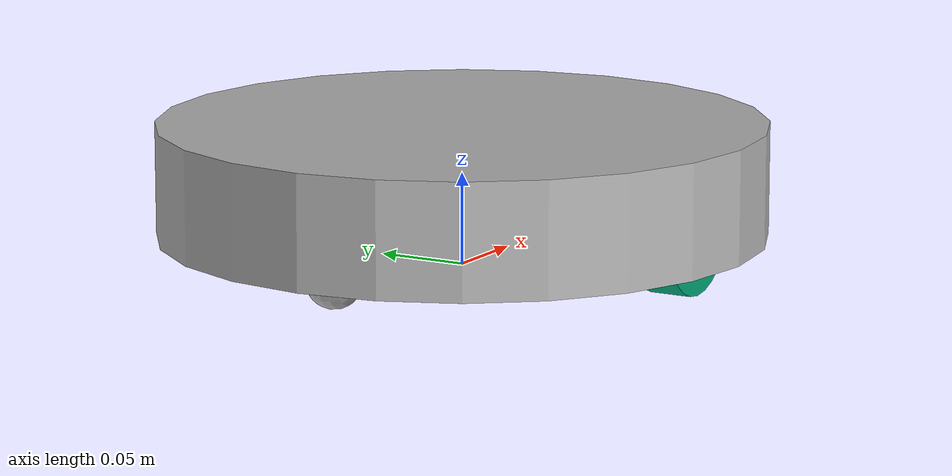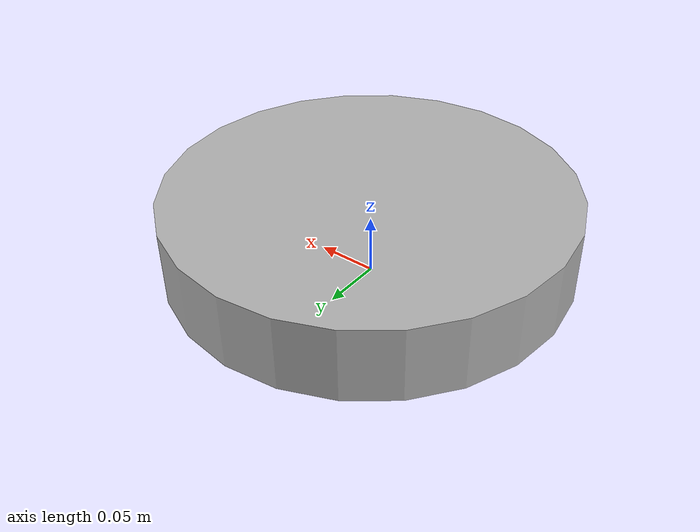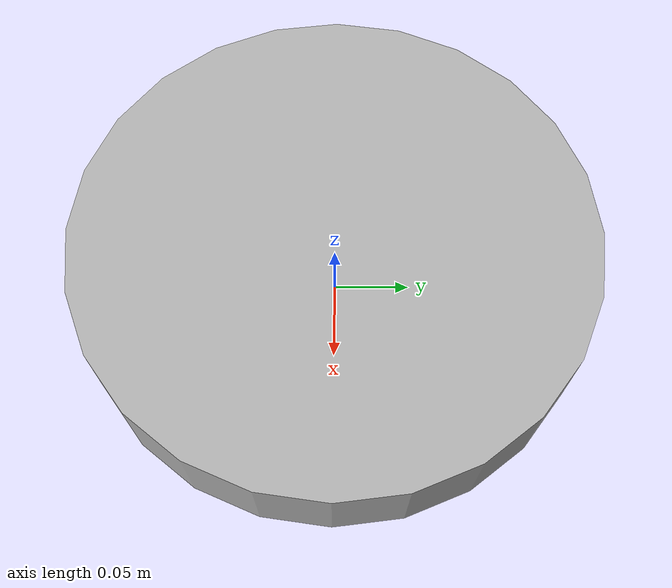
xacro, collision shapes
<?xml version="1.0"?>
<robot name="create">
  <material name="grey">
    <color rgba="0.7 0.7 0.7 1.0"/>
  </material>
  <link name="base">
    <inertial>
      <origin xyz="0.001453 -0.000453 0.029787" rpy="0 0 0"/>
      <inertia ixx="0.058640" ixy="0.000124" ixz="0.000615" iyy="0.058786" iyz="0.000014" izz="1.532440"/>
      <mass value="2.234000"/>
    </inertial>
    <collision name="base_collision">
      <origin xyz="0 0 0.047800" rpy="0 0 0"/>
      <geometry>
        <cylinder radius="0.16495" length="0.061163"/>
      </geometry>
    </collision>

    <collision name="contact_sensor">
      <origin xyz="0 0 0.047800" rpy="0 0 0"/>
      <geometry>
        <cylinder radius="0.16495" length="0.061163"/>
      </geometry>
    </collision>
    <sensor name='my_sensor' type='contact'>
      <contact>
        <collision>contact_sensr</collision>
      </contact>
    </sensor>

    <visual name="base_visual">
      <origin xyz="0 0 0.047800" rpy="0 0 0"/>
      <geometry>
        <mesh filename="package://create_description/meshes/create_body.dae"/>
      </geometry>
    </visual>
    <collision name="front_wheel_collision">
      <origin xyz="0.130000 0 0.017000" rpy="0 1.570700 1.570700"/>
      <geometry>
        <sphere radius="0.018000"/>
      </geometry>
    </collision>
    <visual name="front_wheel_visual">
      <origin xyz="0.130000 0 0.017000" rpy="0 1.570700 1.570700"/>
      <geometry>
        <sphere radius="0.009000"/>
      </geometry>
      <material name="grey"/>
    </visual>
    <collision name="rear_wheel_collision">
      <origin xyz="-0.13 0 0.017" rpy="0 1.5707 1.5707"/>
      <geometry>
        <sphere radius="0.015000"/>
      </geometry>
    </collision>
    <visual name="rear_wheel_visual">
      <origin xyz="-0.130000 0 0.017000" rpy="0 1.570700 1.570700"/>
      <geometry>
        <sphere radius="0.007500"/>
      </geometry>
      <material name="grey"/>
    </visual>
  </link>
  <link name="left_wheel">
    <inertial>
      <origin xyz="0 0 0" rpy="0 0 0"/>
      <inertia ixx="0.001000" ixy="0" ixz="0" iyy="0.001000" iyz="0" izz="0.001000"/>
      <mass value="0.010000"/>
    </inertial>
    <collision name="collision">
      <origin xyz="0 0 0" rpy="0 1.570700 1.570700"/>
      <geometry>
        <cylinder radius="0.033000" length="0.023000"/>
      </geometry>
    </collision>
    <visual name="visual">
      <origin xyz="0 0 0" rpy="0 1.570700 1.570700"/>
      <geometry>
        <cylinder radius="0.033000" length="0.023000"/>
      </geometry>
    </visual>
  </link>
  <link name="right_wheel">
    <inertial>
      <origin xyz="0 0 0" rpy="0 0 0"/>
      <inertia ixx="0.001000" ixy="0" ixz="0" iyy="0.001000" iyz="0" izz="0.001000"/>
      <mass value="0.010000"/>
    </inertial>
    <collision name="collision">
      <origin xyz="0 0 0" rpy="0 1.570700 1.570700"/>
      <geometry>
        <cylinder radius="0.033000" length="0.023000"/>
      </geometry>

    </collision>
    <visual name="visual">
      <origin xyz="0 0 0" rpy="0 1.570700 1.570700"/>
      <geometry>
        <cylinder radius="0.033000" length="0.023000"/>
      </geometry>
    </visual>
  </link>
  <joint name="left_wheel_joint" type="continuous">
    <origin xyz="0 0.13 0.032" rpy="0 0 0"/>
    <parent link="base"/>
    <child link="left_wheel"/>
    <axis xyz="0 1 0"/>
  </joint>
  <joint name="right_wheel_joint" type="continuous">
    <origin xyz="0 -0.13 0.032" rpy="0 0 0"/>
    <parent link="base"/>
    <child link="right_wheel"/>
    <axis xyz="0 1 0"/>
  </joint>
  <transmission name="left_wheel_trans" type="SimpleTransmission">
    <type>transmission_interface/SimpleTransmission</type>
    <actuator name="left_wheel_motor">
      <mechanicalReduction>1</mechanicalReduction>
    </actuator>
    <joint name="left_wheel_joint">
      <hardwareInterface>VelocityJointInterface</hardwareInterface>
    </joint>
  </transmission>
  <transmission name="right_wheel_trans" type="SimpleTransmission">
    <type>transmission_interface/SimpleTransmission</type>
    <actuator name="right_wheel_motor">
      <mechanicalReduction>1</mechanicalReduction>
    </actuator>
    <joint name="right_wheel_joint">
      <hardwareInterface>VelocityJointInterface</hardwareInterface>
    </joint>
  </transmission>
  <gazebo>
    <plugin name="gazebo_ros_control" filename="libgazebo_ros_control.so">
      <robotNamespace>/$(arg namespace)</robotNamespace>
    </plugin>
  </gazebo>
  <gazebo reference="base">
    <mu1>0</mu1>
    <mu2>0</mu2>
  </gazebo>
  <gazebo reference="left_wheel">
    <mu1>10</mu1>
    <mu2>10</mu2>
  </gazebo>
  <gazebo reference="right_wheel">
    <mu1>10</mu1>
    <mu2>10</mu2>
  </gazebo>
</robot>
